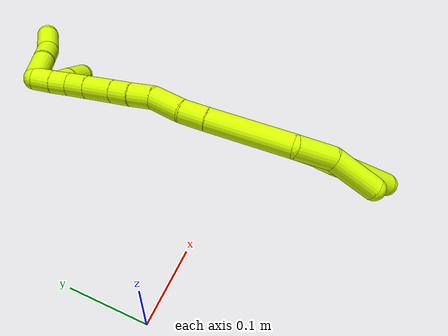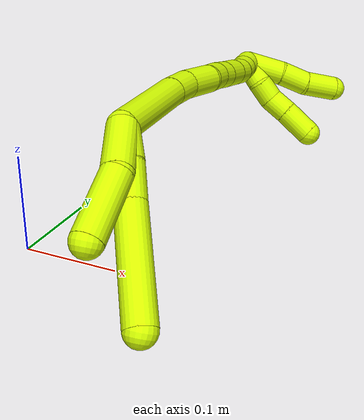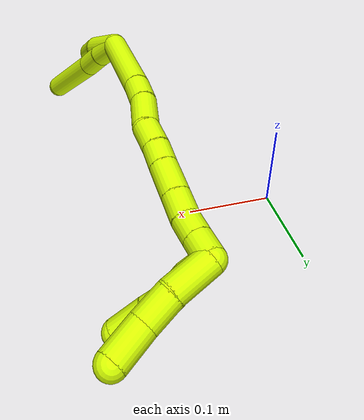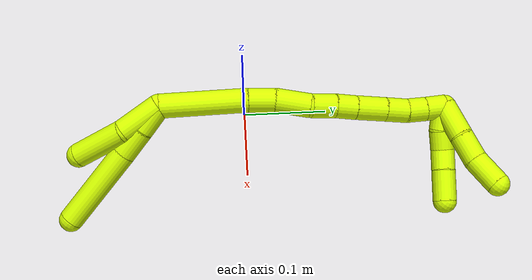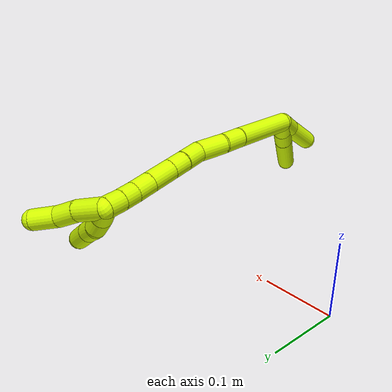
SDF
<sdf version="1.7">
 <world name="default">
  <model name="15">
   <static>0</static>
   <link name="15">
    <collision name="collision-cylinder-e_1_2_8">
     <pose>0.00675 -0.002114 -0.013229 2.98313 0.466741 2.49684</pose>
     <geometry><cylinder><radius>0.0125</radius><length>0.030002</length></cylinder></geometry>
     <surface>
      <friction><ode><mu>1.16</mu><mu2>1.16</mu2><slip1>0</slip1><slip2>0</slip2></ode></friction>
      <contact><ode><kp>1e+06</kp><kd>1</kd><max_vel>0</max_vel><min_depth>0.001</min_depth></ode></contact>
     </surface>
    </collision>
    <visual name="visual-cylinder-e_1_2_8">
     <pose>0.00675 -0.002114 -0.013229 2.98313 0.466741 2.49684</pose>
     <geometry><cylinder><radius>0.0125</radius><length>0.030002</length></cylinder></geometry>
     <material><ambient>0.835294 1 0 1</ambient></material>
    </visual>
    <collision name="collision-cylinder-e_2_8_9">
     <pose>0.019314 -0.00634 -0.04067 2.9941 0.384507 2.41612</pose>
     <geometry><cylinder><radius>0.0125</radius><length>0.030999</length></cylinder></geometry>
     <surface>
      <friction><ode><mu>1.16</mu><mu2>1.16</mu2><slip1>0</slip1><slip2>0</slip2></ode></friction>
      <contact><ode><kp>1e+06</kp><kd>1</kd><max_vel>0</max_vel><min_depth>0.001</min_depth></ode></contact>
     </surface>
    </collision>
    <visual name="visual-cylinder-e_2_8_9">
     <pose>0.019314 -0.00634 -0.04067 2.9941 0.384507 2.41612</pose>
     <geometry><cylinder><radius>0.0125</radius><length>0.030999</length></cylinder></geometry>
     <material><ambient>0.835294 1 0 1</ambient></material>
    </visual>
    <collision name="collision-cylinder-e_3_9_6">
     <pose>0.043295 -0.01597 -0.094802 2.95543 0.420535 2.31694</pose>
     <geometry><cylinder><radius>0.0125</radius><length>0.088998</length></cylinder></geometry>
     <surface>
      <friction><ode><mu>1.16</mu><mu2>1.16</mu2><slip1>0</slip1><slip2>0</slip2></ode></friction>
      <contact><ode><kp>1e+06</kp><kd>1</kd><max_vel>0</max_vel><min_depth>0.001</min_depth></ode></contact>
     </surface>
    </collision>
    <visual name="visual-cylinder-e_3_9_6">
     <pose>0.043295 -0.01597 -0.094802 2.95543 0.420535 2.31694</pose>
     <geometry><cylinder><radius>0.0125</radius><length>0.088998</length></cylinder></geometry>
     <material><ambient>0.835294 1 0 1</ambient></material>
    </visual>
    <collision name="collision-cylinder-e_1_2_10">
     <pose>0.008509 -0.009989 -0.01791 2.63282 0.393291 1.30755</pose>
     <geometry><cylinder><radius>0.0125</radius><length>0.044406</length></cylinder></geometry>
     <surface>
      <friction><ode><mu>1.16</mu><mu2>1.16</mu2><slip1>0</slip1><slip2>0</slip2></ode></friction>
      <contact><ode><kp>1e+06</kp><kd>1</kd><max_vel>0</max_vel><min_depth>0.001</min_depth></ode></contact>
     </surface>
    </collision>
    <visual name="visual-cylinder-e_1_2_10">
     <pose>0.008509 -0.009989 -0.01791 2.63282 0.393291 1.30755</pose>
     <geometry><cylinder><radius>0.0125</radius><length>0.044406</length></cylinder></geometry>
     <material><ambient>0.835294 1 0 1</ambient></material>
    </visual>
    <collision name="collision-cylinder-e_2_10_5">
     <pose>0.019241 -0.032369 -0.060604 2.67801 0.080071 0.336214</pose>
     <geometry><cylinder><radius>0.0125</radius><length>0.055594</length></cylinder></geometry>
     <surface>
      <friction><ode><mu>1.16</mu><mu2>1.16</mu2><slip1>0</slip1><slip2>0</slip2></ode></friction>
      <contact><ode><kp>1e+06</kp><kd>1</kd><max_vel>0</max_vel><min_depth>0.001</min_depth></ode></contact>
     </surface>
    </collision>
    <visual name="visual-cylinder-e_2_10_5">
     <pose>0.019241 -0.032369 -0.060604 2.67801 0.080071 0.336214</pose>
     <geometry><cylinder><radius>0.0125</radius><length>0.055594</length></cylinder></geometry>
     <material><ambient>0.835294 1 0 1</ambient></material>
    </visual>
    <collision name="collision-cylinder-e_1_2_11">
     <pose>-0.006399 0.038246 0.022936 -1.03059 -0.142523 0.080808</pose>
     <geometry><cylinder><radius>0.0125</radius><length>0.090105</length></cylinder></geometry>
     <surface>
      <friction><ode><mu>1.16</mu><mu2>1.16</mu2><slip1>0</slip1><slip2>0</slip2></ode></friction>
      <contact><ode><kp>1e+06</kp><kd>1</kd><max_vel>0</max_vel><min_depth>0.001</min_depth></ode></contact>
     </surface>
    </collision>
    <visual name="visual-cylinder-e_1_2_11">
     <pose>-0.006399 0.038246 0.022936 -1.03059 -0.142523 0.080808</pose>
     <geometry><cylinder><radius>0.0125</radius><length>0.090105</length></cylinder></geometry>
     <material><ambient>0.835294 1 0 1</ambient></material>
    </visual>
    <collision name="collision-cylinder-e_2_11_12">
     <pose>-0.01416 0.088806 0.052456 -1.07986 -0.097198 0.058283</pose>
     <geometry><cylinder><radius>0.0125</radius><length>0.028061</length></cylinder></geometry>
     <surface>
      <friction><ode><mu>1.16</mu><mu2>1.16</mu2><slip1>0</slip1><slip2>0</slip2></ode></friction>
      <contact><ode><kp>1e+06</kp><kd>1</kd><max_vel>0</max_vel><min_depth>0.001</min_depth></ode></contact>
     </surface>
    </collision>
    <visual name="visual-cylinder-e_2_11_12">
     <pose>-0.01416 0.088806 0.052456 -1.07986 -0.097198 0.058283</pose>
     <geometry><cylinder><radius>0.0125</radius><length>0.028061</length></cylinder></geometry>
     <material><ambient>0.835294 1 0 1</ambient></material>
    </visual>
    <collision name="collision-cylinder-e_3_12_13">
     <pose>-0.014216 0.117658 0.066633 -1.14032 0.071625 -0.045937</pose>
     <geometry><cylinder><radius>0.0125</radius><length>0.036487</length></cylinder></geometry>
     <surface>
      <friction><ode><mu>1.16</mu><mu2>1.16</mu2><slip1>0</slip1><slip2>0</slip2></ode></friction>
      <contact><ode><kp>1e+06</kp><kd>1</kd><max_vel>0</max_vel><min_depth>0.001</min_depth></ode></contact>
     </surface>
    </collision>
    <visual name="visual-cylinder-e_3_12_13">
     <pose>-0.014216 0.117658 0.066633 -1.14032 0.071625 -0.045937</pose>
     <geometry><cylinder><radius>0.0125</radius><length>0.036487</length></cylinder></geometry>
     <material><ambient>0.835294 1 0 1</ambient></material>
    </visual>
    <collision name="collision-cylinder-e_4_13_14">
     <pose>-0.015716 0.145892 0.078876 -1.19249 -0.219298 0.149145</pose>
     <geometry><cylinder><radius>0.0125</radius><length>0.025794</length></cylinder></geometry>
     <surface>
      <friction><ode><mu>1.16</mu><mu2>1.16</mu2><slip1>0</slip1><slip2>0</slip2></ode></friction>
      <contact><ode><kp>1e+06</kp><kd>1</kd><max_vel>0</max_vel><min_depth>0.001</min_depth></ode></contact>
     </surface>
    </collision>
    <visual name="visual-cylinder-e_4_13_14">
     <pose>-0.015716 0.145892 0.078876 -1.19249 -0.219298 0.149145</pose>
     <geometry><cylinder><radius>0.0125</radius><length>0.025794</length></cylinder></geometry>
     <material><ambient>0.835294 1 0 1</ambient></material>
    </visual>
    <collision name="collision-cylinder-e_5_14_15">
     <pose>-0.020167 0.167766 0.087051 -1.23725 -0.151586 0.108007</pose>
     <geometry><cylinder><radius>0.0125</radius><length>0.021788</length></cylinder></geometry>
     <surface>
      <friction><ode><mu>1.16</mu><mu2>1.16</mu2><slip1>0</slip1><slip2>0</slip2></ode></friction>
      <contact><ode><kp>1e+06</kp><kd>1</kd><max_vel>0</max_vel><min_depth>0.001</min_depth></ode></contact>
     </surface>
    </collision>
    <visual name="visual-cylinder-e_5_14_15">
     <pose>-0.020167 0.167766 0.087051 -1.23725 -0.151586 0.108007</pose>
     <geometry><cylinder><radius>0.0125</radius><length>0.021788</length></cylinder></geometry>
     <material><ambient>0.835294 1 0 1</ambient></material>
    </visual>
    <collision name="collision-cylinder-e_6_15_16">
     <pose>-0.024538 0.192813 0.095974 -1.22266 -0.170611 0.11973</pose>
     <geometry><cylinder><radius>0.0125</radius><length>0.032108</length></cylinder></geometry>
     <surface>
      <friction><ode><mu>1.16</mu><mu2>1.16</mu2><slip1>0</slip1><slip2>0</slip2></ode></friction>
      <contact><ode><kp>1e+06</kp><kd>1</kd><max_vel>0</max_vel><min_depth>0.001</min_depth></ode></contact>
     </surface>
    </collision>
    <visual name="visual-cylinder-e_6_15_16">
     <pose>-0.024538 0.192813 0.095974 -1.22266 -0.170611 0.11973</pose>
     <geometry><cylinder><radius>0.0125</radius><length>0.032108</length></cylinder></geometry>
     <material><ambient>0.835294 1 0 1</ambient></material>
    </visual>
    <collision name="collision-cylinder-e_7_16_17">
     <pose>-0.029248 0.218635 0.105284 -1.22761 -0.168983 0.119208</pose>
     <geometry><cylinder><radius>0.0125</radius><length>0.023594</length></cylinder></geometry>
     <surface>
      <friction><ode><mu>1.16</mu><mu2>1.16</mu2><slip1>0</slip1><slip2>0</slip2></ode></friction>
      <contact><ode><kp>1e+06</kp><kd>1</kd><max_vel>0</max_vel><min_depth>0.001</min_depth></ode></contact>
     </surface>
    </collision>
    <visual name="visual-cylinder-e_7_16_17">
     <pose>-0.029248 0.218635 0.105284 -1.22761 -0.168983 0.119208</pose>
     <geometry><cylinder><radius>0.0125</radius><length>0.023594</length></cylinder></geometry>
     <material><ambient>0.835294 1 0 1</ambient></material>
    </visual>
    <collision name="collision-cylinder-e_8_17_18">
     <pose>-0.033904 0.238409 0.113574 -1.11028 -0.264957 0.16492</pose>
     <geometry><cylinder><radius>0.0125</radius><length>0.02041</length></cylinder></geometry>
     <surface>
      <friction><ode><mu>1.16</mu><mu2>1.16</mu2><slip1>0</slip1><slip2>0</slip2></ode></friction>
      <contact><ode><kp>1e+06</kp><kd>1</kd><max_vel>0</max_vel><min_depth>0.001</min_depth></ode></contact>
     </surface>
    </collision>
    <visual name="visual-cylinder-e_8_17_18">
     <pose>-0.033904 0.238409 0.113574 -1.11028 -0.264957 0.16492</pose>
     <geometry><cylinder><radius>0.0125</radius><length>0.02041</length></cylinder></geometry>
     <material><ambient>0.835294 1 0 1</ambient></material>
    </visual>
    <collision name="collision-cylinder-e_9_18_1">
     <pose>-0.039257 0.256384 0.123077 -1.06024 -0.250167 0.147121</pose>
     <geometry><cylinder><radius>0.0125</radius><length>0.021653</length></cylinder></geometry>
     <surface>
      <friction><ode><mu>1.16</mu><mu2>1.16</mu2><slip1>0</slip1><slip2>0</slip2></ode></friction>
      <contact><ode><kp>1e+06</kp><kd>1</kd><max_vel>0</max_vel><min_depth>0.001</min_depth></ode></contact>
     </surface>
    </collision>
    <visual name="visual-cylinder-e_9_18_1">
     <pose>-0.039257 0.256384 0.123077 -1.06024 -0.250167 0.147121</pose>
     <geometry><cylinder><radius>0.0125</radius><length>0.021653</length></cylinder></geometry>
     <material><ambient>0.835294 1 0 1</ambient></material>
    </visual>
    <collision name="collision-cylinder-e_1_1_19">
     <pose>-0.034642 0.269449 0.118995 -2.73971 0.629968 -2.02419</pose>
     <geometry><cylinder><radius>0.0125</radius><length>0.024765</length></cylinder></geometry>
     <surface>
      <friction><ode><mu>1.16</mu><mu2>1.16</mu2><slip1>0</slip1><slip2>0</slip2></ode></friction>
      <contact><ode><kp>1e+06</kp><kd>1</kd><max_vel>0</max_vel><min_depth>0.001</min_depth></ode></contact>
     </surface>
    </collision>
    <visual name="visual-cylinder-e_1_1_19">
     <pose>-0.034642 0.269449 0.118995 -2.73971 0.629968 -2.02419</pose>
     <geometry><cylinder><radius>0.0125</radius><length>0.024765</length></cylinder></geometry>
     <material><ambient>0.835294 1 0 1</ambient></material>
    </visual>
    <collision name="collision-cylinder-e_2_19_20">
     <pose>-0.021788 0.279117 0.102781 -2.45397 0.550137 -1.33509</pose>
     <geometry><cylinder><radius>0.0125</radius><length>0.021268</length></cylinder></geometry>
     <surface>
      <friction><ode><mu>1.16</mu><mu2>1.16</mu2><slip1>0</slip1><slip2>0</slip2></ode></friction>
      <contact><ode><kp>1e+06</kp><kd>1</kd><max_vel>0</max_vel><min_depth>0.001</min_depth></ode></contact>
     </surface>
    </collision>
    <visual name="visual-cylinder-e_2_19_20">
     <pose>-0.021788 0.279117 0.102781 -2.45397 0.550137 -1.33509</pose>
     <geometry><cylinder><radius>0.0125</radius><length>0.021268</length></cylinder></geometry>
     <material><ambient>0.835294 1 0 1</ambient></material>
    </visual>
    <collision name="collision-cylinder-e_3_20_21">
     <pose>-0.007795 0.28891 0.090148 -2.51897 0.883082 -1.9462</pose>
     <geometry><cylinder><radius>0.0125</radius><length>0.021829</length></cylinder></geometry>
     <surface>
      <friction><ode><mu>1.16</mu><mu2>1.16</mu2><slip1>0</slip1><slip2>0</slip2></ode></friction>
      <contact><ode><kp>1e+06</kp><kd>1</kd><max_vel>0</max_vel><min_depth>0.001</min_depth></ode></contact>
     </surface>
    </collision>
    <visual name="visual-cylinder-e_3_20_21">
     <pose>-0.007795 0.28891 0.090148 -2.51897 0.883082 -1.9462</pose>
     <geometry><cylinder><radius>0.0125</radius><length>0.021829</length></cylinder></geometry>
     <material><ambient>0.835294 1 0 1</ambient></material>
    </visual>
    <collision name="collision-cylinder-e_4_21_4">
     <pose>0.012348 0.299402 0.075604 -2.51527 0.816386 -1.85621</pose>
     <geometry><cylinder><radius>0.0125</radius><length>0.032139</length></cylinder></geometry>
     <surface>
      <friction><ode><mu>1.16</mu><mu2>1.16</mu2><slip1>0</slip1><slip2>0</slip2></ode></friction>
      <contact><ode><kp>1e+06</kp><kd>1</kd><max_vel>0</max_vel><min_depth>0.001</min_depth></ode></contact>
     </surface>
    </collision>
    <visual name="visual-cylinder-e_4_21_4">
     <pose>0.012348 0.299402 0.075604 -2.51527 0.816386 -1.85621</pose>
     <geometry><cylinder><radius>0.0125</radius><length>0.032139</length></cylinder></geometry>
     <material><ambient>0.835294 1 0 1</ambient></material>
    </visual>
    <collision name="collision-cylinder-e_1_1_22">
     <pose>-0.026248 0.276108 0.126742 -1.70809 0.973451 -1.09158</pose>
     <geometry><cylinder><radius>0.0125</radius><length>0.03795</length></cylinder></geometry>
     <surface>
      <friction><ode><mu>1.16</mu><mu2>1.16</mu2><slip1>0</slip1><slip2>0</slip2></ode></friction>
      <contact><ode><kp>1e+06</kp><kd>1</kd><max_vel>0</max_vel><min_depth>0.001</min_depth></ode></contact>
     </surface>
    </collision>
    <visual name="visual-cylinder-e_1_1_22">
     <pose>-0.026248 0.276108 0.126742 -1.70809 0.973451 -1.09158</pose>
     <geometry><cylinder><radius>0.0125</radius><length>0.03795</length></cylinder></geometry>
     <material><ambient>0.835294 1 0 1</ambient></material>
    </visual>
    <collision name="collision-cylinder-e_2_22_23">
     <pose>-8.3e-05 0.2961 0.12308 -1.80037 0.825152 -1.00841</pose>
     <geometry><cylinder><radius>0.0125</radius><length>0.028519</length></cylinder></geometry>
     <surface>
      <friction><ode><mu>1.16</mu><mu2>1.16</mu2><slip1>0</slip1><slip2>0</slip2></ode></friction>
      <contact><ode><kp>1e+06</kp><kd>1</kd><max_vel>0</max_vel><min_depth>0.001</min_depth></ode></contact>
     </surface>
    </collision>
    <visual name="visual-cylinder-e_2_22_23">
     <pose>-8.3e-05 0.2961 0.12308 -1.80037 0.825152 -1.00841</pose>
     <geometry><cylinder><radius>0.0125</radius><length>0.028519</length></cylinder></geometry>
     <material><ambient>0.835294 1 0 1</ambient></material>
    </visual>
    <collision name="collision-cylinder-e_3_23_3">
     <pose>0.02235 0.317211 0.122092 -1.46737 0.794006 -0.722793</pose>
     <geometry><cylinder><radius>0.0125</radius><length>0.033531</length></cylinder></geometry>
     <surface>
      <friction><ode><mu>1.16</mu><mu2>1.16</mu2><slip1>0</slip1><slip2>0</slip2></ode></friction>
      <contact><ode><kp>1e+06</kp><kd>1</kd><max_vel>0</max_vel><min_depth>0.001</min_depth></ode></contact>
     </surface>
    </collision>
    <visual name="visual-cylinder-e_3_23_3">
     <pose>0.02235 0.317211 0.122092 -1.46737 0.794006 -0.722793</pose>
     <geometry><cylinder><radius>0.0125</radius><length>0.033531</length></cylinder></geometry>
     <material><ambient>0.835294 1 0 1</ambient></material>
    </visual>
    <collision name="collision-sphere-3">
     <pose>0.034306 0.3289 0.123305 0 -0 0</pose>
     <geometry><sphere><radius>0.0125</radius></sphere></geometry>
     <surface>
      <friction><ode><mu>1.16</mu><mu2>1.16</mu2><slip1>0</slip1><slip2>0</slip2></ode></friction>
      <contact><ode><kp>1e+06</kp><kd>1</kd><max_vel>0</max_vel><min_depth>0.001</min_depth></ode></contact>
     </surface>
    </collision>
    <visual name="visual-sphere-3">
     <pose>0.034306 0.3289 0.123305 0 -0 0</pose>
     <geometry><sphere><radius>0.0125</radius></sphere></geometry>
     <material><ambient>0.835294 1 0 1</ambient></material>
    </visual>
    <collision name="collision-sphere-23">
     <pose>0.010393 0.305521 0.120879 0 -0 0</pose>
     <geometry><sphere><radius>0.0125</radius></sphere></geometry>
     <surface>
      <friction><ode><mu>1.16</mu><mu2>1.16</mu2><slip1>0</slip1><slip2>0</slip2></ode></friction>
      <contact><ode><kp>1e+06</kp><kd>1</kd><max_vel>0</max_vel><min_depth>0.001</min_depth></ode></contact>
     </surface>
    </collision>
    <visual name="visual-sphere-23">
     <pose>0.010393 0.305521 0.120879 0 -0 0</pose>
     <geometry><sphere><radius>0.0125</radius></sphere></geometry>
     <material><ambient>0.835294 1 0 1</ambient></material>
    </visual>
    <collision name="collision-sphere-22">
     <pose>-0.010558 0.28668 0.125282 0 -0 0</pose>
     <geometry><sphere><radius>0.0125</radius></sphere></geometry>
     <surface>
      <friction><ode><mu>1.16</mu><mu2>1.16</mu2><slip1>0</slip1><slip2>0</slip2></ode></friction>
      <contact><ode><kp>1e+06</kp><kd>1</kd><max_vel>0</max_vel><min_depth>0.001</min_depth></ode></contact>
     </surface>
    </collision>
    <visual name="visual-sphere-22">
     <pose>-0.010558 0.28668 0.125282 0 -0 0</pose>
     <geometry><sphere><radius>0.0125</radius></sphere></geometry>
     <material><ambient>0.835294 1 0 1</ambient></material>
    </visual>
    <collision name="collision-sphere-4">
     <pose>0.024057 0.305852 0.066687 0 -0 0</pose>
     <geometry><sphere><radius>0.0125</radius></sphere></geometry>
     <surface>
      <friction><ode><mu>1.16</mu><mu2>1.16</mu2><slip1>0</slip1><slip2>0</slip2></ode></friction>
      <contact><ode><kp>1e+06</kp><kd>1</kd><max_vel>0</max_vel><min_depth>0.001</min_depth></ode></contact>
     </surface>
    </collision>
    <visual name="visual-sphere-4">
     <pose>0.024057 0.305852 0.066687 0 -0 0</pose>
     <geometry><sphere><radius>0.0125</radius></sphere></geometry>
     <material><ambient>0.835294 1 0 1</ambient></material>
    </visual>
    <collision name="collision-sphere-21">
     <pose>0.000639 0.292951 0.08452 0 -0 0</pose>
     <geometry><sphere><radius>0.0125</radius></sphere></geometry>
     <surface>
      <friction><ode><mu>1.16</mu><mu2>1.16</mu2><slip1>0</slip1><slip2>0</slip2></ode></friction>
      <contact><ode><kp>1e+06</kp><kd>1</kd><max_vel>0</max_vel><min_depth>0.001</min_depth></ode></contact>
     </surface>
    </collision>
    <visual name="visual-sphere-21">
     <pose>0.000639 0.292951 0.08452 0 -0 0</pose>
     <geometry><sphere><radius>0.0125</radius></sphere></geometry>
     <material><ambient>0.835294 1 0 1</ambient></material>
    </visual>
    <collision name="collision-sphere-20">
     <pose>-0.016229 0.28487 0.095776 0 -0 0</pose>
     <geometry><sphere><radius>0.0125</radius></sphere></geometry>
     <surface>
      <friction><ode><mu>1.16</mu><mu2>1.16</mu2><slip1>0</slip1><slip2>0</slip2></ode></friction>
      <contact><ode><kp>1e+06</kp><kd>1</kd><max_vel>0</max_vel><min_depth>0.001</min_depth></ode></contact>
     </surface>
    </collision>
    <visual name="visual-sphere-20">
     <pose>-0.016229 0.28487 0.095776 0 -0 0</pose>
     <geometry><sphere><radius>0.0125</radius></sphere></geometry>
     <material><ambient>0.835294 1 0 1</ambient></material>
    </visual>
    <collision name="collision-sphere-5">
     <pose>0.021464 -0.044758 -0.085388 0 -0 0</pose>
     <geometry><sphere><radius>0.0125</radius></sphere></geometry>
     <surface>
      <friction><ode><mu>1.16</mu><mu2>1.16</mu2><slip1>0</slip1><slip2>0</slip2></ode></friction>
      <contact><ode><kp>1e+06</kp><kd>1</kd><max_vel>0</max_vel><min_depth>0.001</min_depth></ode></contact>
     </surface>
    </collision>
    <visual name="visual-sphere-5">
     <pose>0.021464 -0.044758 -0.085388 0 -0 0</pose>
     <geometry><sphere><radius>0.0125</radius></sphere></geometry>
     <material><ambient>0.835294 1 0 1</ambient></material>
    </visual>
    <collision name="collision-sphere-10">
     <pose>0.017018 -0.019979 -0.035821 0 -0 0</pose>
     <geometry><sphere><radius>0.0125</radius></sphere></geometry>
     <surface>
      <friction><ode><mu>1.16</mu><mu2>1.16</mu2><slip1>0</slip1><slip2>0</slip2></ode></friction>
      <contact><ode><kp>1e+06</kp><kd>1</kd><max_vel>0</max_vel><min_depth>0.001</min_depth></ode></contact>
     </surface>
    </collision>
    <visual name="visual-sphere-10">
     <pose>0.017018 -0.019979 -0.035821 0 -0 0</pose>
     <geometry><sphere><radius>0.0125</radius></sphere></geometry>
     <material><ambient>0.835294 1 0 1</ambient></material>
    </visual>
    <collision name="collision-sphere-6">
     <pose>0.061462 -0.023488 -0.134722 0 -0 0</pose>
     <geometry><sphere><radius>0.0125</radius></sphere></geometry>
     <surface>
      <friction><ode><mu>1.16</mu><mu2>1.16</mu2><slip1>0</slip1><slip2>0</slip2></ode></friction>
      <contact><ode><kp>1e+06</kp><kd>1</kd><max_vel>0</max_vel><min_depth>0.001</min_depth></ode></contact>
     </surface>
    </collision>
    <visual name="visual-sphere-6">
     <pose>0.061462 -0.023488 -0.134722 0 -0 0</pose>
     <geometry><sphere><radius>0.0125</radius></sphere></geometry>
     <material><ambient>0.835294 1 0 1</ambient></material>
    </visual>
    <collision name="collision-sphere-9">
     <pose>0.025128 -0.008451 -0.054882 0 -0 0</pose>
     <geometry><sphere><radius>0.0125</radius></sphere></geometry>
     <surface>
      <friction><ode><mu>1.16</mu><mu2>1.16</mu2><slip1>0</slip1><slip2>0</slip2></ode></friction>
      <contact><ode><kp>1e+06</kp><kd>1</kd><max_vel>0</max_vel><min_depth>0.001</min_depth></ode></contact>
     </surface>
    </collision>
    <visual name="visual-sphere-9">
     <pose>0.025128 -0.008451 -0.054882 0 -0 0</pose>
     <geometry><sphere><radius>0.0125</radius></sphere></geometry>
     <material><ambient>0.835294 1 0 1</ambient></material>
    </visual>
    <collision name="collision-sphere-2">
     <geometry><sphere><radius>0.0125</radius></sphere></geometry>
     <surface>
      <friction><ode><mu>1.16</mu><mu2>1.16</mu2><slip1>0</slip1><slip2>0</slip2></ode></friction>
      <contact><ode><kp>1e+06</kp><kd>1</kd><max_vel>0</max_vel><min_depth>0.001</min_depth></ode></contact>
     </surface>
    </collision>
    <visual name="visual-sphere-2">
     <geometry><sphere><radius>0.0125</radius></sphere></geometry>
     <material><ambient>0.835294 1 0 1</ambient></material>
    </visual>
    <collision name="collision-sphere-19">
     <pose>-0.027348 0.273363 0.109786 0 -0 0</pose>
     <geometry><sphere><radius>0.0125</radius></sphere></geometry>
     <surface>
      <friction><ode><mu>1.16</mu><mu2>1.16</mu2><slip1>0</slip1><slip2>0</slip2></ode></friction>
      <contact><ode><kp>1e+06</kp><kd>1</kd><max_vel>0</max_vel><min_depth>0.001</min_depth></ode></contact>
     </surface>
    </collision>
    <visual name="visual-sphere-19">
     <pose>-0.027348 0.273363 0.109786 0 -0 0</pose>
     <geometry><sphere><radius>0.0125</radius></sphere></geometry>
     <material><ambient>0.835294 1 0 1</ambient></material>
    </visual>
    <collision name="collision-sphere-8">
     <pose>0.0135 -0.004228 -0.026458 0 -0 0</pose>
     <geometry><sphere><radius>0.0125</radius></sphere></geometry>
     <surface>
      <friction><ode><mu>1.16</mu><mu2>1.16</mu2><slip1>0</slip1><slip2>0</slip2></ode></friction>
      <contact><ode><kp>1e+06</kp><kd>1</kd><max_vel>0</max_vel><min_depth>0.001</min_depth></ode></contact>
     </surface>
    </collision>
    <visual name="visual-sphere-8">
     <pose>0.0135 -0.004228 -0.026458 0 -0 0</pose>
     <geometry><sphere><radius>0.0125</radius></sphere></geometry>
     <material><ambient>0.835294 1 0 1</ambient></material>
    </visual>
    <collision name="collision-sphere-11">
     <pose>-0.012799 0.076491 0.045873 0 -0 0</pose>
     <geometry><sphere><radius>0.0125</radius></sphere></geometry>
     <surface>
      <friction><ode><mu>1.16</mu><mu2>1.16</mu2><slip1>0</slip1><slip2>0</slip2></ode></friction>
      <contact><ode><kp>1e+06</kp><kd>1</kd><max_vel>0</max_vel><min_depth>0.001</min_depth></ode></contact>
     </surface>
    </collision>
    <visual name="visual-sphere-11">
     <pose>-0.012799 0.076491 0.045873 0 -0 0</pose>
     <geometry><sphere><radius>0.0125</radius></sphere></geometry>
     <material><ambient>0.835294 1 0 1</ambient></material>
    </visual>
    <collision name="collision-sphere-12">
     <pose>-0.015522 0.101121 0.05904 0 -0 0</pose>
     <geometry><sphere><radius>0.0125</radius></sphere></geometry>
     <surface>
      <friction><ode><mu>1.16</mu><mu2>1.16</mu2><slip1>0</slip1><slip2>0</slip2></ode></friction>
      <contact><ode><kp>1e+06</kp><kd>1</kd><max_vel>0</max_vel><min_depth>0.001</min_depth></ode></contact>
     </surface>
    </collision>
    <visual name="visual-sphere-12">
     <pose>-0.015522 0.101121 0.05904 0 -0 0</pose>
     <geometry><sphere><radius>0.0125</radius></sphere></geometry>
     <material><ambient>0.835294 1 0 1</ambient></material>
    </visual>
    <collision name="collision-sphere-13">
     <pose>-0.012911 0.134194 0.074227 0 -0 0</pose>
     <geometry><sphere><radius>0.0125</radius></sphere></geometry>
     <surface>
      <friction><ode><mu>1.16</mu><mu2>1.16</mu2><slip1>0</slip1><slip2>0</slip2></ode></friction>
      <contact><ode><kp>1e+06</kp><kd>1</kd><max_vel>0</max_vel><min_depth>0.001</min_depth></ode></contact>
     </surface>
    </collision>
    <visual name="visual-sphere-13">
     <pose>-0.012911 0.134194 0.074227 0 -0 0</pose>
     <geometry><sphere><radius>0.0125</radius></sphere></geometry>
     <material><ambient>0.835294 1 0 1</ambient></material>
    </visual>
    <collision name="collision-sphere-14">
     <pose>-0.018522 0.15759 0.083525 0 -0 0</pose>
     <geometry><sphere><radius>0.0125</radius></sphere></geometry>
     <surface>
      <friction><ode><mu>1.16</mu><mu2>1.16</mu2><slip1>0</slip1><slip2>0</slip2></ode></friction>
      <contact><ode><kp>1e+06</kp><kd>1</kd><max_vel>0</max_vel><min_depth>0.001</min_depth></ode></contact>
     </surface>
    </collision>
    <visual name="visual-sphere-14">
     <pose>-0.018522 0.15759 0.083525 0 -0 0</pose>
     <geometry><sphere><radius>0.0125</radius></sphere></geometry>
     <material><ambient>0.835294 1 0 1</ambient></material>
    </visual>
    <collision name="collision-sphere-15">
     <pose>-0.021812 0.177941 0.090577 0 -0 0</pose>
     <geometry><sphere><radius>0.0125</radius></sphere></geometry>
     <surface>
      <friction><ode><mu>1.16</mu><mu2>1.16</mu2><slip1>0</slip1><slip2>0</slip2></ode></friction>
      <contact><ode><kp>1e+06</kp><kd>1</kd><max_vel>0</max_vel><min_depth>0.001</min_depth></ode></contact>
     </surface>
    </collision>
    <visual name="visual-sphere-15">
     <pose>-0.021812 0.177941 0.090577 0 -0 0</pose>
     <geometry><sphere><radius>0.0125</radius></sphere></geometry>
     <material><ambient>0.835294 1 0 1</ambient></material>
    </visual>
    <collision name="collision-sphere-16">
     <pose>-0.027264 0.207685 0.101371 0 -0 0</pose>
     <geometry><sphere><radius>0.0125</radius></sphere></geometry>
     <surface>
      <friction><ode><mu>1.16</mu><mu2>1.16</mu2><slip1>0</slip1><slip2>0</slip2></ode></friction>
      <contact><ode><kp>1e+06</kp><kd>1</kd><max_vel>0</max_vel><min_depth>0.001</min_depth></ode></contact>
     </surface>
    </collision>
    <visual name="visual-sphere-16">
     <pose>-0.027264 0.207685 0.101371 0 -0 0</pose>
     <geometry><sphere><radius>0.0125</radius></sphere></geometry>
     <material><ambient>0.835294 1 0 1</ambient></material>
    </visual>
    <collision name="collision-sphere-17">
     <pose>-0.031232 0.229586 0.109197 0 -0 0</pose>
     <geometry><sphere><radius>0.0125</radius></sphere></geometry>
     <surface>
      <friction><ode><mu>1.16</mu><mu2>1.16</mu2><slip1>0</slip1><slip2>0</slip2></ode></friction>
      <contact><ode><kp>1e+06</kp><kd>1</kd><max_vel>0</max_vel><min_depth>0.001</min_depth></ode></contact>
     </surface>
    </collision>
    <visual name="visual-sphere-17">
     <pose>-0.031232 0.229586 0.109197 0 -0 0</pose>
     <geometry><sphere><radius>0.0125</radius></sphere></geometry>
     <material><ambient>0.835294 1 0 1</ambient></material>
    </visual>
    <collision name="collision-sphere-18">
     <pose>-0.036576 0.247232 0.117951 0 -0 0</pose>
     <geometry><sphere><radius>0.0125</radius></sphere></geometry>
     <surface>
      <friction><ode><mu>1.16</mu><mu2>1.16</mu2><slip1>0</slip1><slip2>0</slip2></ode></friction>
      <contact><ode><kp>1e+06</kp><kd>1</kd><max_vel>0</max_vel><min_depth>0.001</min_depth></ode></contact>
     </surface>
    </collision>
    <visual name="visual-sphere-18">
     <pose>-0.036576 0.247232 0.117951 0 -0 0</pose>
     <geometry><sphere><radius>0.0125</radius></sphere></geometry>
     <material><ambient>0.835294 1 0 1</ambient></material>
    </visual>
    <collision name="collision-sphere-1">
     <pose>-0.041937 0.265536 0.128203 0 -0 0</pose>
     <geometry><sphere><radius>0.0125</radius></sphere></geometry>
     <surface>
      <friction><ode><mu>1.16</mu><mu2>1.16</mu2><slip1>0</slip1><slip2>0</slip2></ode></friction>
      <contact><ode><kp>1e+06</kp><kd>1</kd><max_vel>0</max_vel><min_depth>0.001</min_depth></ode></contact>
     </surface>
    </collision>
    <visual name="visual-sphere-1">
     <pose>-0.041937 0.265536 0.128203 0 -0 0</pose>
     <geometry><sphere><radius>0.0125</radius></sphere></geometry>
     <material><ambient>0.835294 1 0 1</ambient></material>
    </visual>
    <inertial>
     <pose>-0.000799 0.124785 0.037513 0 -0 0</pose>
     <mass>0.75</mass>
     <inertia>
      <ixx>0.000129</ixx>
      <ixy>0</ixy>
      <ixz>0</ixz>
      <iyy>0.000169</iyy>
      <iyz>0</iyz>
      <izz>-0.000114</izz>
     </inertia>
    </inertial>
   </link>
   <pose>0.166273 -0.087189 0.188376 -0.551287 -0.090078 -0.08078</pose>
  </model>
 </world>
</sdf>
